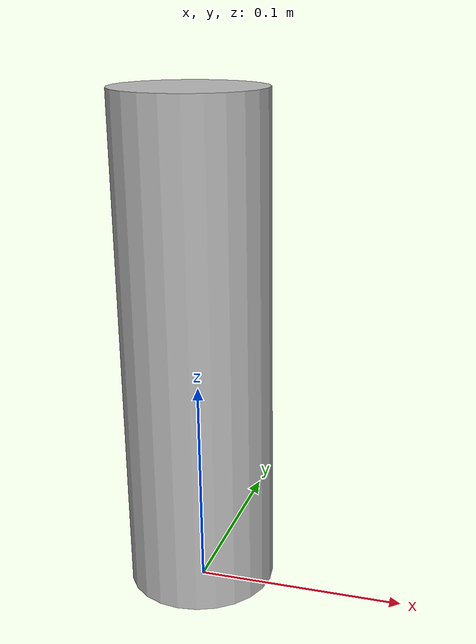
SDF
<?xml version="1.0" ?>
<sdf version='1.4'>
  <model name="pringles">
      <static>0</static>
      <link name='link'>
        <inertial>
          <mass>0.2</mass>
          <inertia>
            <ixx>0.000000</ixx>
            <ixy>0.000000</ixy>
            <ixz>0.000000</ixz>
            <iyy>0.000000</iyy>
            <iyz>0.000000</iyz>
            <izz>0.000000</izz>
          </inertia>
        </inertial>
        <collision name='collision'>
        <pose>0 0 0.12 0 0 0</pose>
          <geometry>
            <cylinder>
              <radius>0.035</radius>
              <length>0.235</length>
            </cylinder>
          </geometry>
          <surface>
            <bounce/>
            <friction>
              <ode/>
            </friction>
            <contact>
              <ode/>
            </contact>
          </surface>
        </collision>
        <visual name='visual'>
        <pose>0 0 0.12 0 0 0</pose>
          <geometry>
            <cylinder>
              <radius>0.035</radius>
              <length>0.235</length>
            </cylinder>
          </geometry>
          <material>
            <script>
	      <uri>model://pringles/material/scripts</uri>
	      <uri>model://pringles/material/textures</uri>
              <name>Custom/pringles</name>
            </script>
          </material>
        </visual>
        <velocity_decay>
          <linear>0.000000</linear>
          <angular>0.000000</angular>
        </velocity_decay>
        <self_collide>0</self_collide>
        <kinematic>0</kinematic>
        <gravity>1</gravity>
      </link>
  </model>
</sdf>
